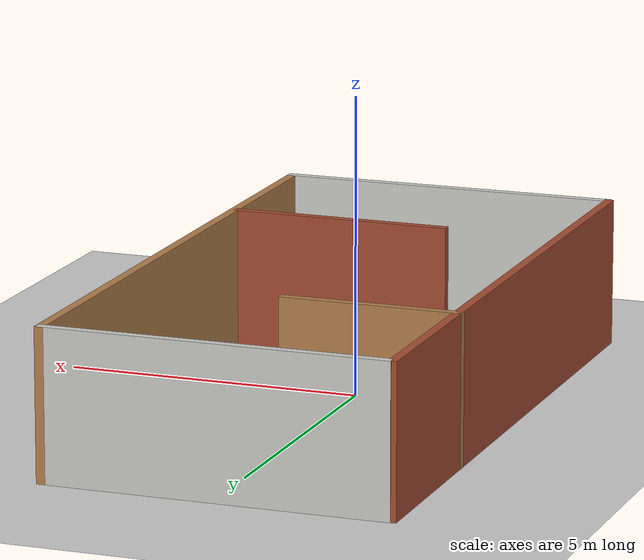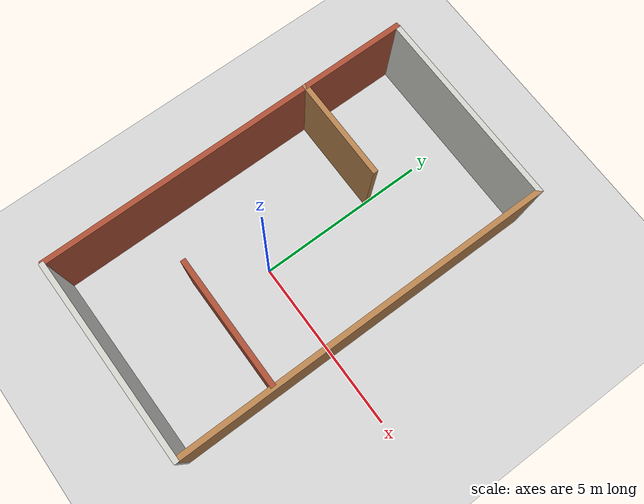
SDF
<sdf version="1.7">
 <world name="default">
  <light name="sun" type="directional">
   <pose>0 0 10 0 -0 0</pose>
   <diffuse>0.8 0.8 0.8 1</diffuse>
   <specular>0.2 0.2 0.2 1</specular>
   <attenuation>
    <range>1000</range>
    <constant>0.9</constant>
    <linear>0.01</linear>
    <quadratic>0.001</quadratic>
   </attenuation>
   <direction>-0.5 0.1 -0.9</direction>
   <spot><inner_angle>0</inner_angle><outer_angle>0</outer_angle><falloff>0</falloff></spot>
  </light>
  <model name="ground_plane">
   <static>1</static>
   <link name="link">
    <collision name="collision">
     <geometry><plane><normal>0 0 1</normal><size>100 100</size></plane></geometry>
     <surface>
      <contact><collide_bitmask>65535</collide_bitmask></contact>
      <friction><ode><mu>100</mu><mu2>50</mu2></ode></friction>
     </surface>
    </collision>
    <visual name="visual">
     <cast_shadows>0</cast_shadows>
     <geometry><plane><normal>0 0 1</normal><size>100 100</size></plane></geometry>
     <material>
      <script><uri>file://media/materials/scripts/gazebo.material</uri><name>Gazebo/Grey</name></script>
     </material>
    </visual>
   </link>
  </model>
  <gravity>0 0 -9.8</gravity>
  <magnetic_field>6e-06 2.3e-05 -4.2e-05</magnetic_field>
  <atmosphere type="adiabatic"/>
  <physics type="ode">
   <max_step_size>0.001</max_step_size>
   <real_time_factor>1</real_time_factor>
   <real_time_update_rate>1000</real_time_update_rate>
  </physics>
  <scene><ambient>0.4 0.4 0.4 1</ambient><background>0.7 0.7 0.7 1</background><shadows>1</shadows></scene>
  <spherical_coordinates>
   <surface_model>EARTH_WGS84</surface_model>
   <latitude_deg>0</latitude_deg>
   <longitude_deg>0</longitude_deg>
   <elevation>0</elevation>
   <heading_deg>0</heading_deg>
  </spherical_coordinates>
  <model name="Untitled">
   <pose>-0.042124 0.863306 0 0 -0 0</pose>
   <link name="Wall_12">
    <collision name="Wall_12_Collision">
     <geometry><box><size>3.75 0.15 2.5</size></box></geometry>
     <pose>0 0 1.25 0 -0 0</pose>
    </collision>
    <visual name="Wall_12_Visual">
     <pose>0 0 1.25 0 -0 0</pose>
     <geometry><box><size>3.75 0.15 2.5</size></box></geometry>
     <material>
      <script><uri>file://media/materials/scripts/gazebo.material</uri><name>Gazebo/Bricks</name></script>
      <ambient>1 1 1 1</ambient>
     </material>
     <meta><layer>0</layer></meta>
    </visual>
    <pose>0.964581 -2.65284 0 0 -0 3.14159</pose>
   </link>
   <link name="Wall_14">
    <collision name="Wall_14_Collision">
     <geometry><box><size>3 0.15 2.5</size></box></geometry>
     <pose>0 0 1.25 0 -0 0</pose>
    </collision>
    <visual name="Wall_14_Visual">
     <pose>0 0 1.25 0 -0 0</pose>
     <geometry><box><size>3 0.15 2.5</size></box></geometry>
     <material>
      <script><uri>file://media/materials/scripts/gazebo.material</uri><name>Gazebo/Wood</name></script>
      <ambient>1 1 1 1</ambient>
     </material>
     <meta><layer>0</layer></meta>
    </visual>
    <pose>-1.42306 2.481 0 0 -0 0</pose>
   </link>
   <link name="Wall_3">
    <collision name="Wall_3_Collision">
     <geometry><box><size>5.79545 0.15 2.5</size></box></geometry>
     <pose>0 0 1.25 0 -0 0</pose>
    </collision>
    <visual name="Wall_3_Visual">
     <pose>0 0 1.25 0 -0 0</pose>
     <geometry><box><size>5.79545 0.15 2.5</size></box></geometry>
     <material>
      <script><uri>file://media/materials/scripts/gazebo.material</uri><name>Gazebo/CeilingTiled</name></script>
      <ambient>1 1 1 1</ambient>
     </material>
     <meta><layer>0</layer></meta>
    </visual>
    <pose>0.024759 -5.42465 0 0 -0 0.009424</pose>
   </link>
   <link name="Wall_4">
    <collision name="Wall_4_Collision">
     <geometry><box><size>11 0.15 2.5</size></box></geometry>
     <pose>0 0 1.25 0 -0 0</pose>
    </collision>
    <visual name="Wall_4_Visual">
     <pose>0 0 1.25 0 -0 0</pose>
     <geometry><box><size>11 0.15 2.5</size></box></geometry>
     <material>
      <script><uri>file://media/materials/scripts/gazebo.material</uri><name>Gazebo/Wood</name></script>
      <ambient>1 1 1 1</ambient>
     </material>
     <meta><layer>0</layer></meta>
    </visual>
    <pose>2.84736 0.026952 0 0 -0 1.5708</pose>
   </link>
   <link name="Wall_6">
    <collision name="Wall_6_Collision">
     <geometry><box><size>11 0.15 2.5</size></box></geometry>
     <pose>0 0 1.25 0 -0 0</pose>
    </collision>
    <visual name="Wall_6_Visual">
     <pose>0 0 1.25 0 -0 0</pose>
     <geometry><box><size>11 0.15 2.5</size></box></geometry>
     <material>
      <script><uri>file://media/materials/scripts/gazebo.material</uri><name>Gazebo/Bricks</name></script>
      <ambient>1 1 1 1</ambient>
     </material>
     <meta><layer>0</layer></meta>
    </visual>
    <pose>-2.84383 0.00981 0 0 -0 1.5708</pose>
   </link>
   <link name="Wall_9">
    <collision name="Wall_9_Collision">
     <geometry><box><size>5.75 0.15 2.5</size></box></geometry>
     <pose>0 0 1.25 0 -0 0</pose>
    </collision>
    <visual name="Wall_9_Visual">
     <pose>0 0 1.25 0 -0 0</pose>
     <geometry><box><size>5.75 0.15 2.5</size></box></geometry>
     <material>
      <script><uri>file://media/materials/scripts/gazebo.material</uri><name>Gazebo/CeilingTiled</name></script>
      <ambient>1 1 1 1</ambient>
     </material>
     <meta><layer>0</layer></meta>
    </visual>
    <pose>0.047358 5.45195 0 0 -0 3.14159</pose>
   </link>
   <static>1</static>
  </model>
 </world>
</sdf>
